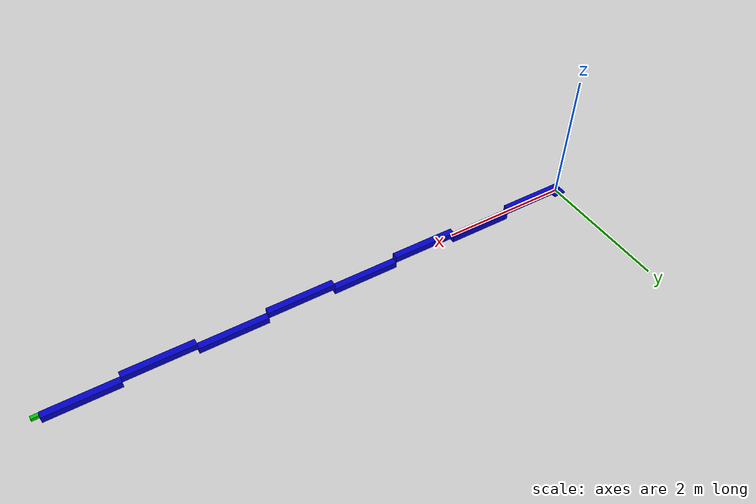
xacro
<?xml version="1.0"?>
<robot name="r6_arm" xmlns:xacro="http://wiki.ros.org/xacro">

<xacro:include filename="$(find planar_arm_support)/urdf/planar_link_macro.xacro" />
<xacro:include filename="$(find planar_arm_support)/urdf/planar_joint_macro.xacro" />

<xacro:property name="link_length" value="1.0" />
<xacro:property name="joint_limits" value="${pi / 2}" />

  <material name="blue">
      <color rgba="0 0 0.8 1.0"/>
  </material>

  <material name="green">
      <color rgba="0 0.8 0 1.0"/>
  </material>

  <link name="world" />

  <link name="base_link">
    <visual>
      <geometry>
        <box size="0.2 0.2 0.02"/>
      </geometry>
      <origin xyz="0 0 -0.01"/>
      <material name="blue"/>
    </visual>
  </link>

  <xacro:planar_link name="link_1" length="${link_length}" width="0.1" geom_z_offset="0.05" />
  <xacro:planar_link name="link_2" length="${link_length}" width="0.1" geom_z_offset="-0.05" />
  <xacro:planar_link name="link_3" length="${link_length}" width="0.1" geom_z_offset="0.05" />
  <xacro:planar_link name="link_4" length="${link_length}" width="0.1" geom_z_offset="-0.05" />
  <xacro:planar_link name="link_5" length="${link_length}" width="0.1" geom_z_offset="0.05" />
  <xacro:planar_link name="link_6" length="${link_length}" width="0.1" geom_z_offset="-0.05" />
  <xacro:planar_link name="link_7" length="${link_length}" width="0.1" geom_z_offset="0.05" />
  <xacro:planar_link name="link_8" length="${link_length}" width="0.1" geom_z_offset="-0.05" />

<link name="flange" />

<link name="tool">
    <visual>
      <geometry>
        <box size="0.1 0.05 0.05"/>
      </geometry>
      <origin xyz="0.05 0 0"/>
      <material name="green"/>
    </visual>
    <collision>
      <geometry>
        <box size="0.1 0.05 0.05"/>
      </geometry>
      <origin xyz="0.05 0 0"/>
    </collision>
  </link>

<link name="tool0" />

<joint name="world_to_base_link" type="fixed">
    <parent link="world"/>
    <child link="base_link"/>
</joint>

<joint name="base_link_link_1" type="revolute">
    <axis xyz="0 0 1"/>
    <limit effort="1000.0" lower="-${joint_limits}" upper="${joint_limits}" velocity="0.5"/>
    <parent link="base_link"/>
    <child link="link_1"/>
    <origin xyz="0 0 0"/>
</joint>

<xacro:planar_joint parent_link="link_1" child_link="link_2" link_length="${link_length}" lower_limit="-${joint_limits}" upper_limit="${joint_limits}"/>
<xacro:planar_joint parent_link="link_2" child_link="link_3" link_length="${link_length}" lower_limit="-${joint_limits}" upper_limit="${joint_limits}"/>
<xacro:planar_joint parent_link="link_3" child_link="link_4" link_length="${link_length}" lower_limit="-${joint_limits}" upper_limit="${joint_limits}"/>
<xacro:planar_joint parent_link="link_4" child_link="link_5" link_length="${link_length}" lower_limit="-${joint_limits}" upper_limit="${joint_limits}"/>
<xacro:planar_joint parent_link="link_5" child_link="link_6" link_length="${link_length}" lower_limit="-${joint_limits}" upper_limit="${joint_limits}"/>
<xacro:planar_joint parent_link="link_6" child_link="link_7" link_length="${link_length}" lower_limit="-${joint_limits}" upper_limit="${joint_limits}"/>
<xacro:planar_joint parent_link="link_7" child_link="link_8" link_length="${link_length}" lower_limit="-${joint_limits}" upper_limit="${joint_limits}"/>

<joint name="link_8_to_flange" type="fixed">
    <parent link="link_8"/>
    <child link="flange"/>
    <origin xyz="${link_length} 0 0"/>
</joint>

<joint name="flange_to_tool" type="fixed">
    <parent link="flange"/>
    <child link="tool"/>
</joint>

<joint name="tool_to_tool0" type="fixed">
    <parent link="tool"/>
    <child link="tool0"/>
    <origin xyz="0.1 0 0"/>
</joint>

</robot>

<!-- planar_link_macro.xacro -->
<robot xmlns:xacro="http://wiki.ros.org/xacro">

<xacro:macro name="planar_link" params="name length width geom_z_offset">

<link name="${name}">
    <visual>
      <geometry>
        <box size="${length} ${width} ${width}"/>
      </geometry>
      <origin xyz="${length / 2} 0 ${geom_z_offset}"/>
      <material name="blue"/>
    </visual>
    <collision>
      <geometry>
        <box size="${length} ${width} ${width}"/>
      </geometry>
      <origin xyz="${length / 2} 0 ${geom_z_offset}"/>
    </collision>
  </link>

</xacro:macro>
</robot>

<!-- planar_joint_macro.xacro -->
<robot xmlns:xacro="http://wiki.ros.org/xacro">
<xacro:macro name="planar_joint" params="parent_link child_link link_length lower_limit upper_limit">

<joint name="${parent_link}_to_${child_link}" type="revolute">
    <axis xyz="0 0 1"/>
    <limit effort="1000.0" lower="${lower_limit}" upper="${upper_limit}" velocity="0.5"/>
    <parent link="${parent_link}"/>
    <child link="${child_link}"/>
    <origin xyz="${link_length} 0 0"/>
</joint>

</xacro:macro>
</robot>
